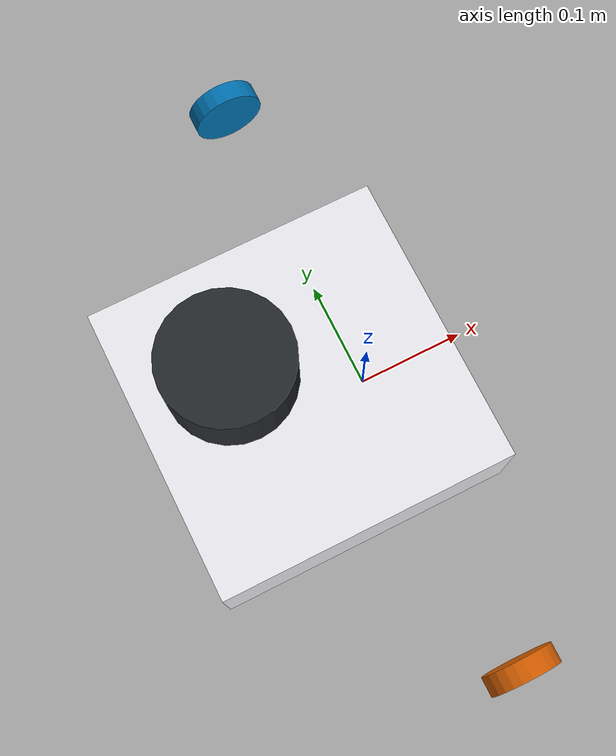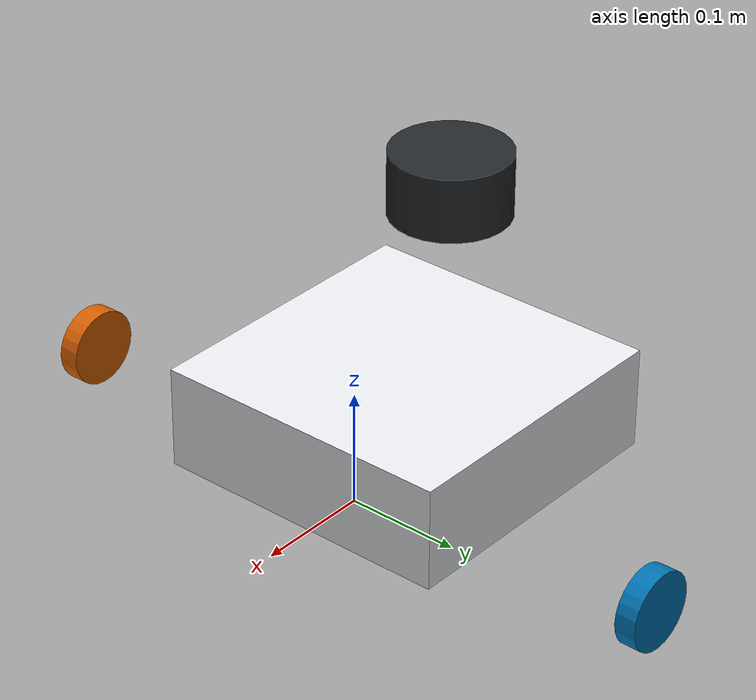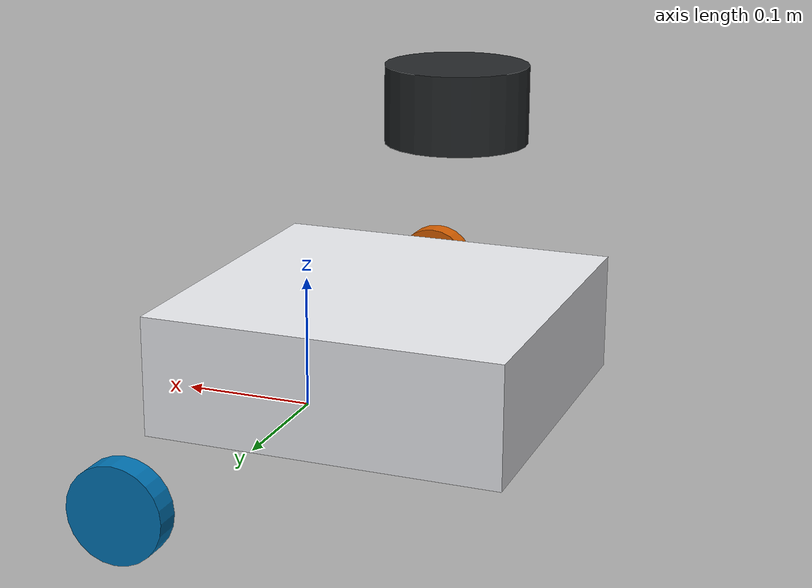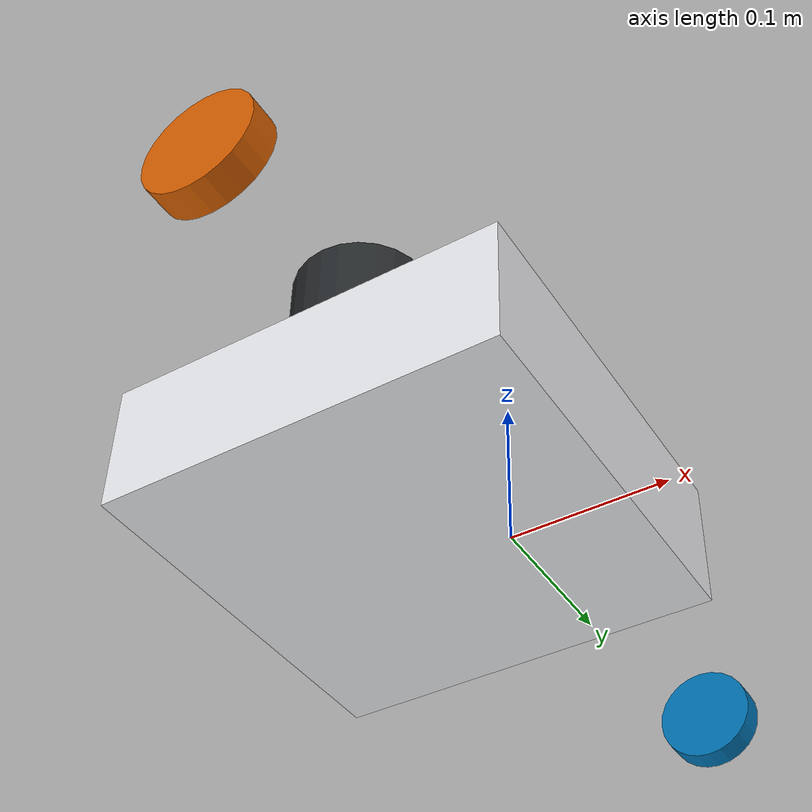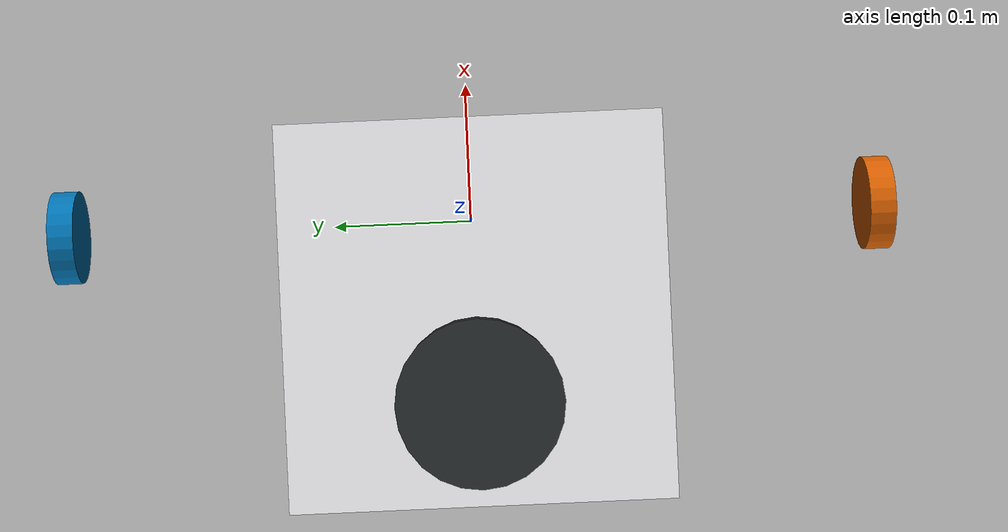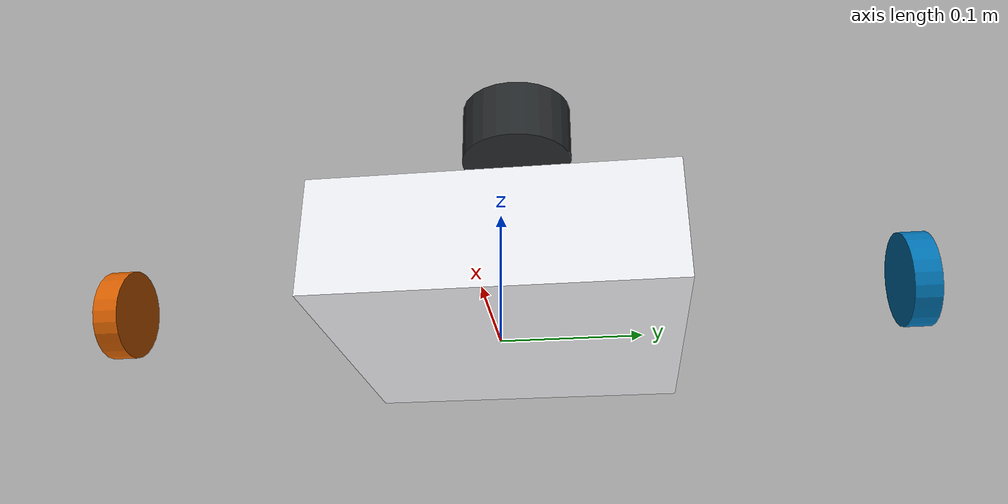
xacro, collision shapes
<?xml version="1.0"?>
<robot xmlns:xacro="http://ros.org/wiki/xacro" name="robo_camuflado">

  <!-- Base Footprint (frame) -->
  <link name="base_footprint" />

  <!-- Base Link -->
  <link name="base_link">
    <inertial>
      <origin xyz="-0.064 0 0.048" rpy="0 0 0"/>
      <mass value="1.3729096"/>
      <inertia
        ixx="0.042111447"
        ixy="0" ixz="0"
        iyy="0.042111447"
        iyz="0"
        izz="0.075254874"/>
    </inertial>
    <collision name="base_collision">
      <origin xyz="-0.064 0 0.048" rpy="0 0 0"/>
      <geometry>
        <box size="0.265 0.265 0.089"/>
      </geometry>
    </collision>
    <visual name="base_visual">
      <origin xyz="-0.064 0 0" rpy="0 0 0"/>
      <geometry>
        <mesh filename="package://turtlebot3/meshes/waffle_base.dae" scale="0.001 0.001 0.001"/>
      </geometry>
      <material name="base_material">
        <color rgba="0.921568627 0.925490196 0.941176471 1"/>
      </material>
    </visual>
  </link>

  <!-- Joint base_joint (fixed) -->
  <joint name="base_joint" type="fixed">
    <origin xyz="0 0 0.01" rpy="0 0 0"/>
    <parent link="base_footprint"/>
    <child link="base_link"/>
  </joint>

  <!-- IMU Link -->
  <link name="imu_link">
    <!-- Sensor não faz parte da definição URDF; para simulação deve usar plugins ou arquivos separados -->
  </link>

  <!-- Joint imu_joint (fixed) -->
  <joint name="imu_joint" type="fixed">
    <origin xyz="-0.032 0 0.068" rpy="0 0 0"/>
    <parent link="base_link"/>
    <child link="imu_link"/>
  </joint>

  <!-- LIDAR Link -->
  <link name="base_scan">
    <inertial>
      <origin xyz="-0.052 0 0.111" rpy="0 0 0"/>
      <mass value="0.114"/>
      <inertia
        ixx="0.001" ixy="0" ixz="0"
        iyy="0.001" iyz="0"
        izz="0.001"/>
    </inertial>
    <collision name="lidar_sensor_collision">
      <origin xyz="-0.052 0 0.111" rpy="0 0 0"/>
      <geometry>
        <cylinder radius="0.0508" length="0.055"/>
      </geometry>
    </collision>
    <visual name="lidar_sensor_visual">
      <origin xyz="-0.064 0 0.121" rpy="0 0 0"/>
      <geometry>
        <mesh filename="package://turtlebot3/meshes/lds.dae" scale="0.001 0.001 0.001"/>
      </geometry>
      <material name="lidar_material">
        <color rgba="0.145098039 0.156862745 0.164705882 1"/>
      </material>
    </visual>
  </link>

  <!-- Joint lidar_joint (fixed) -->
  <joint name="lidar_joint" type="fixed">
    <origin xyz="-0.064 0 0.121" rpy="0 0 0"/>
    <parent link="base_link"/>
    <child link="base_scan"/>
  </joint>

  <!-- Wheel left link -->
  <link name="wheel_left_link">
    <inertial>
      <origin xyz="0 0.144 0.023" rpy="-1.57 0 0"/>
      <mass value="0.1"/>
      <inertia
        ixx="1.1175580e-05" ixy="-4.2369783e-11" ixz="-5.9381719e-09"
        iyy="1.1192413e-05" iyz="-1.4400107e-11"
        izz="2.0712558e-05"/>
    </inertial>
    <collision name="wheel_left_collision">
      <origin xyz="0 0.144 0.023" rpy="-1.57 0 0"/>
      <geometry>
        <cylinder radius="0.033" length="0.018"/>
      </geometry>
      <!-- Friction e contact parameters não são padrão URDF, usados em SDF/simuladores -->
    </collision>
    <visual name="wheel_left_visual">
      <origin xyz="0 0.144 0.023" rpy="0 0 0"/>
      <geometry>
        <mesh filename="package://turtlebot3/meshes/tire.dae" scale="0.001 0.001 0.001"/>
      </geometry>
    </visual>
  </link>

  <!-- Joint wheel_left_joint (continuous) -->
  <joint name="wheel_left_joint" type="continuous">
    <origin xyz="0 0.144 0" rpy="0 0 0"/>
    <parent link="base_link"/>
    <child link="wheel_left_link"/>
    <axis xyz="0 1 0"/>
    <limit effort="5" velocity="10" lower="-10000" upper="10000"/>
    <dynamics damping="0.7"/>
  </joint>

  <!-- Wheel right link -->
  <link name="wheel_right_link">
    <inertial>
      <origin xyz="0 -0.144 0.023" rpy="-1.57 0 0"/>
      <mass value="0.1"/>
      <inertia
        ixx="1.1175580e-05" ixy="-4.2369783e-11" ixz="-5.9381719e-09"
        iyy="1.1192413e-05" iyz="-1.4400107e-11"
        izz="2.0712558e-05"/>
    </inertial>
    <collision name="wheel_right_collision">
      <origin xyz="0 -0.144 0.023" rpy="-1.57 0 0"/>
      <geometry>
        <cylinder radius="0.033" length="0.018"/>
      </geometry>
    </collision>
    <visual name="wheel_right_visual">
      <origin xyz="0 -0.144 0.023" rpy="0 0 0"/>
      <geometry>
        <mesh filename="package://turtlebot3/meshes/tire.dae" scale="0.001 0.001 0.001"/>
      </geometry>
    </visual>
  </link>

  <!-- Joint wheel_right_joint (continuous) -->
  <joint name="wheel_right_joint" type="continuous">
    <origin xyz="0 -0.144 0" rpy="0 0 0"/>
    <parent link="base_link"/>
    <child link="wheel_right_link"/>
    <axis xyz="0 1 0"/>
    <limit effort="5" velocity="10" lower="-10000" upper="10000"/>
    <dynamics damping="0.7"/>
  </joint>

</robot>
